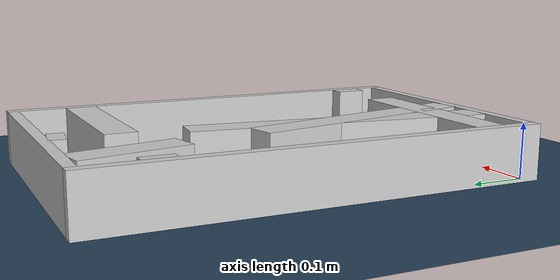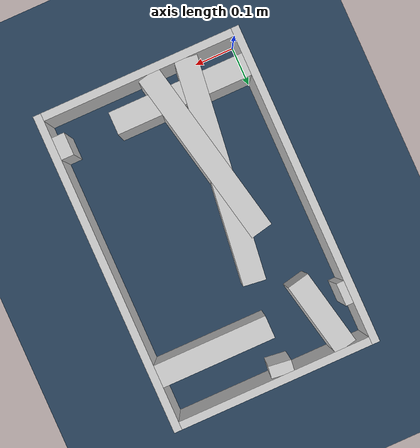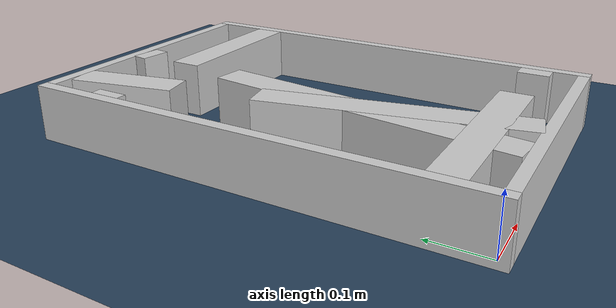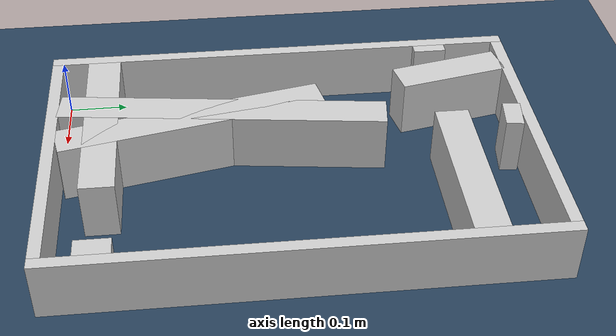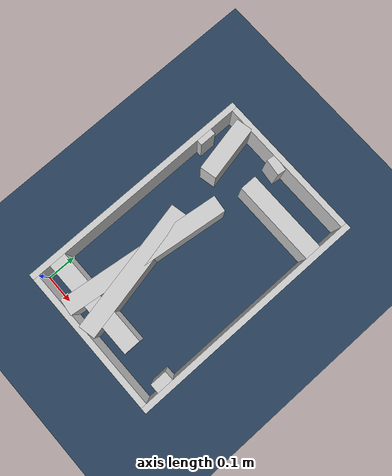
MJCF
<?xml version="1.0" ?>
<mujoco model="generated_real_template">
  <compiler angle="degree"/>
  <option timestep="0.002" integrator="implicitfast" iterations="100" cone="elliptic"/>
  <default>
    <geom density="1"/>
  </default>
  <asset>
    <texture builtin="gradient" height="3072" rgb1="0.3 0.5 0.7" rgb2="0 0 0" type="skybox" width="512"/>
    <texture builtin="checker" height="300" mark="edge" markrgb="0.8 0.8 0.8" name="groundplane" rgb1="0.2 0.3 0.4" rgb2="0.1 0.2 0.3" type="2d" width="300"/>
    <material name="groundplane" reflectance="0.2" texrepeat="5 5" texture="groundplane" texuniform="true"/>
  </asset>
  <worldbody>
    <light dir="0 0 -1" directional="true" pos="0 0 1.5"/>
    <geom name="floor" type="plane" condim="4" friction="0.5 0.005 0.001" material="groundplane" size="0 0 0.05"/>
    <body name="walls">
      <geom name="wall_boundary_left" type="box" condim="4" friction="1.0 0.005 0.0001" rgba="0.8 0.8 0.8 1" pos="-0.010000 0.387500 0.050000" euler="0 0 0.000000" size="0.010000 0.407500 0.050000"/>
      <geom name="wall_boundary_right" type="box" condim="4" friction="1.0 0.005 0.0001" rgba="0.8 0.8 0.8 1" pos="0.500000 0.387500 0.050000" euler="0 0 0.000000" size="0.010000 0.407500 0.050000"/>
      <geom name="wall_boundary_bottom" type="box" condim="4" friction="1.0 0.005 0.0001" rgba="0.8 0.8 0.8 1" pos="0.245000 -0.010000 0.050000" euler="0 0 0.000000" size="0.245000 0.010000 0.050000"/>
      <geom name="wall_boundary_top" type="box" condim="4" friction="1.0 0.005 0.0001" rgba="0.8 0.8 0.8 1" pos="0.245000 0.785000 0.050000" euler="0 0 0.000000" size="0.245000 0.010000 0.050000"/>
      <geom name="wall_inner_1_1" type="box" condim="4" friction="1.0 0.005 0.0001" rgba="0.8 0.8 0.8 1" pos="0.174727 0.222560 0.050000" euler="0 0 101.882364" size="0.227434 0.028500 0.050000"/>
      <geom name="wall_inner_1_2" type="box" condim="4" friction="1.0 0.005 0.0001" rgba="0.8 0.8 0.8 1" pos="0.078302 0.680831 0.050000" euler="0 0 101.882364" size="0.096231 0.028500 0.050000"/>
      <geom name="wall_inner_2_1" type="box" condim="4" friction="1.0 0.005 0.0001" rgba="0.8 0.8 0.8 1" pos="0.159282 0.274970 0.050000" euler="0 0 83.015220" size="0.277026 0.028500 0.050000"/>
      <geom name="wall_inner_2_2" type="box" condim="4" friction="1.0 0.005 0.0001" rgba="0.8 0.8 0.8 1" pos="0.218722 0.760132 0.050000" euler="0 0 83.015220" size="0.014979 0.028500 0.050000"/>
      <geom name="wall_inner_3_1" type="box" condim="4" friction="1.0 0.005 0.0001" rgba="0.8 0.8 0.8 1" pos="0.009558 0.658466 0.050000" euler="0 0 0.000000" size="0.009558 0.028500 0.050000"/>
      <geom name="wall_inner_3_2" type="box" condim="4" friction="1.0 0.005 0.0001" rgba="0.8 0.8 0.8 1" pos="0.345914 0.658466 0.050000" euler="0 0 0.000000" size="0.144086 0.028500 0.050000"/>
      <geom name="wall_inner_4_1" type="box" condim="4" friction="1.0 0.005 0.0001" rgba="0.8 0.8 0.8 1" pos="0.171813 0.071908 0.050000" euler="0 0 0.000000" size="0.171813 0.028500 0.050000"/>
      <geom name="wall_inner_4_2" type="box" condim="4" friction="1.0 0.005 0.0001" rgba="0.8 0.8 0.8 1" pos="0.473995 0.071908 0.050000" euler="0 0 0.000000" size="0.016005 0.028500 0.050000"/>
    </body>
  </worldbody>
</mujoco>
